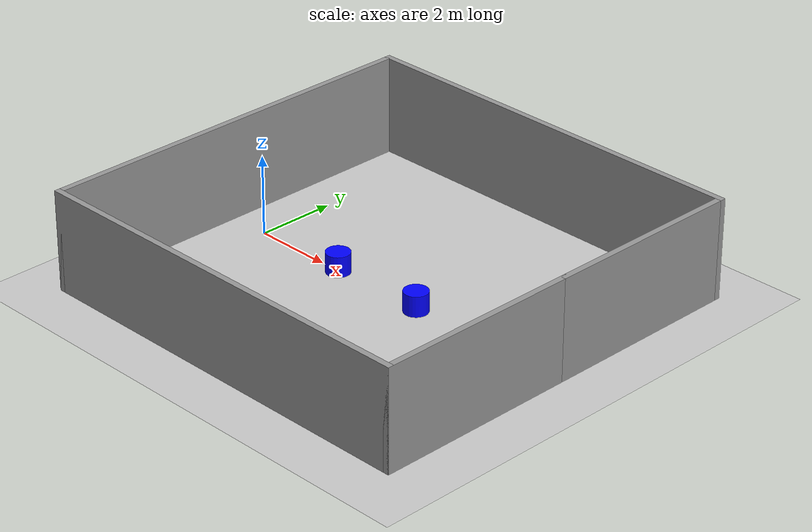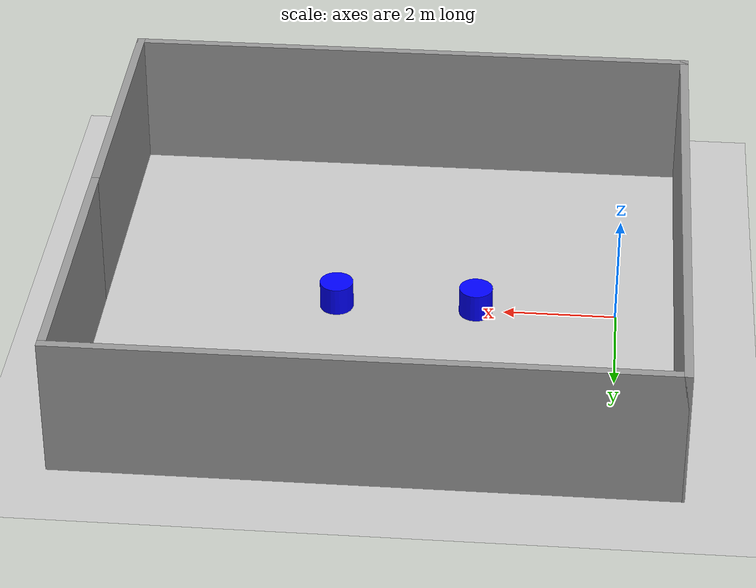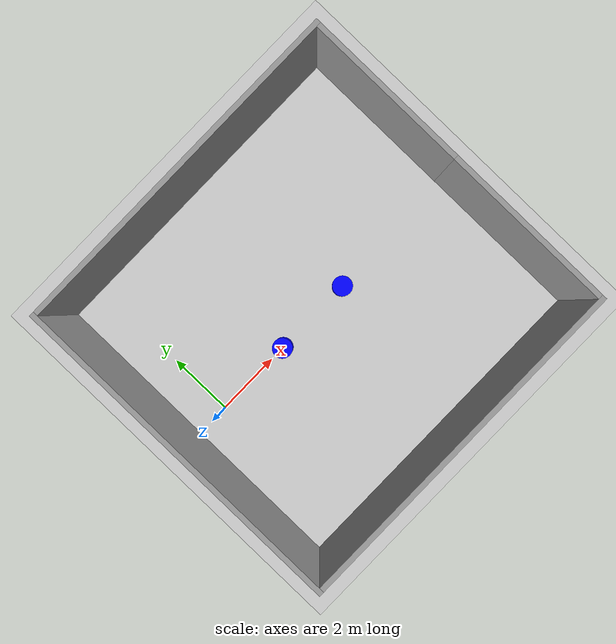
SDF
<sdf version="1.7">
 <world name="default">
  <light name="sun" type="directional">
   <pose>0 0 10 0 -0 0</pose>
   <diffuse>0.8 0.8 0.8 1</diffuse>
   <specular>0.2 0.2 0.2 1</specular>
   <attenuation>
    <range>1000</range>
    <constant>0.9</constant>
    <linear>0.01</linear>
    <quadratic>0.001</quadratic>
   </attenuation>
   <direction>-0.5 0.1 -0.9</direction>
   <spot><inner_angle>0</inner_angle><outer_angle>0</outer_angle><falloff>0</falloff></spot>
  </light>
  <model name="visual_cylinder_no_collision">
   <static>true</static>
   <pose>2.5 0 0 0 0 0</pose>
   <link name="cylinder_link">
    <visual name="cylinder_visual">
     <geometry><cylinder><radius>0.3</radius><length>1.0</length></cylinder></geometry>
     <material><ambient>0 0 1 1</ambient><diffuse>0 0 1 1</diffuse></material>
    </visual>
   </link>
  </model>
  <model name="visual_cylinder_no_collision1">
   <static>true</static>
   <pose>5 0 0 0 0 0</pose>
   <link name="cylinder_link1">
    <visual name="cylinder_visual1">
     <geometry><cylinder><radius>0.3</radius><length>1.0</length></cylinder></geometry>
     <material><ambient>0 0 1 1</ambient><diffuse>0 0 1 1</diffuse></material>
    </visual>
   </link>
  </model>
  <model name="ground_plane">
   <static>1</static>
   <link name="link">
    <collision name="collision">
     <geometry><plane><normal>0 0 1</normal><size>100 100</size></plane></geometry>
     <surface><friction><ode><mu>100</mu><mu2>50</mu2></ode></friction></surface>
    </collision>
    <visual name="visual">
     <cast_shadows>0</cast_shadows>
     <geometry><plane><normal>0 0 1</normal><size>100 100</size></plane></geometry>
     <material>
      <script><uri>file://media/materials/scripts/gazebo.material</uri><name>Gazebo/Grey</name></script>
     </material>
    </visual>
   </link>
  </model>
  <gravity>0 0 -9.8</gravity>
  <magnetic_field>6e-06 2.3e-05 -4.2e-05</magnetic_field>
  <atmosphere type="adiabatic"/>
  <physics type="ode">
   <max_step_size>0.001</max_step_size>
   <real_time_factor>1</real_time_factor>
   <real_time_update_rate>1000</real_time_update_rate>
  </physics>
  <scene><ambient>0.4 0.4 0.4 1</ambient><background>0.7 0.7 0.7 1</background><shadows>1</shadows></scene>
  <spherical_coordinates>
   <surface_model>EARTH_WGS84</surface_model>
   <latitude_deg>0</latitude_deg>
   <longitude_deg>0</longitude_deg>
   <elevation>0</elevation>
   <heading_deg>0</heading_deg>
  </spherical_coordinates>
  <model name="walls">
   <pose>4.06158 0.077644 0 0 -0 0</pose>
   <link name="Wall_1">
    <collision name="Wall_1_Collision">
     <geometry><box><size>10.25 0.15 2.5</size></box></geometry>
     <pose>0 0 1.25 0 -0 0</pose>
    </collision>
    <visual name="Wall_1_Visual">
     <pose>0 0 1.25 0 -0 0</pose>
     <geometry><box><size>10.25 0.15 2.5</size></box></geometry>
     <material>
      <script><uri>file://media/materials/scripts/gazebo.material</uri><name>Gazebo/Grey</name></script>
      <ambient>1 1 1 1</ambient>
     </material>
     <meta><layer>0</layer></meta>
    </visual>
    <pose>-5.175 0 0 0 -0 -1.5708</pose>
   </link>
   <link name="Wall_2">
    <collision name="Wall_2_Collision">
     <geometry><box><size>10.5 0.15 2.5</size></box></geometry>
     <pose>0 0 1.25 0 -0 0</pose>
    </collision>
    <visual name="Wall_2_Visual">
     <pose>0 0 1.25 0 -0 0</pose>
     <geometry><box><size>10.5 0.15 2.5</size></box></geometry>
     <material>
      <script><uri>file://media/materials/scripts/gazebo.material</uri><name>Gazebo/Grey</name></script>
      <ambient>1 1 1 1</ambient>
     </material>
     <meta><layer>0</layer></meta>
    </visual>
    <pose>0 -5.05 0 0 -0 0</pose>
   </link>
   <link name="Wall_3">
    <collision name="Wall_3_Collision">
     <geometry><box><size>5.25 0.15 2.5</size></box></geometry>
     <pose>0 0 1.25 0 -0 0</pose>
    </collision>
    <visual name="Wall_3_Visual">
     <pose>0 0 1.25 0 -0 0</pose>
     <geometry><box><size>5.25 0.15 2.5</size></box></geometry>
     <material>
      <script><uri>file://media/materials/scripts/gazebo.material</uri><name>Gazebo/Grey</name></script>
      <ambient>1 1 1 1</ambient>
     </material>
     <meta><layer>0</layer></meta>
    </visual>
    <pose>5.175 -2.5 0 0 -0 1.5708</pose>
   </link>
   <link name="Wall_4">
    <collision name="Wall_4_Collision">
     <geometry><box><size>5 0.15 2.5</size></box></geometry>
     <pose>0 0 1.25 0 -0 0</pose>
    </collision>
    <visual name="Wall_4_Visual">
     <pose>0 0 1.25 0 -0 0</pose>
     <geometry><box><size>5 0.15 2.5</size></box></geometry>
     <material>
      <script><uri>file://media/materials/scripts/gazebo.material</uri><name>Gazebo/Grey</name></script>
      <ambient>1 1 1 1</ambient>
     </material>
     <meta><layer>0</layer></meta>
    </visual>
    <pose>5.175 2.475 0 0 -0 1.5708</pose>
   </link>
   <link name="Wall_8">
    <collision name="Wall_8_Collision">
     <geometry><box><size>10.5 0.15 2.5</size></box></geometry>
     <pose>0 0 1.25 0 -0 0</pose>
    </collision>
    <visual name="Wall_8_Visual">
     <pose>0 0 1.25 0 -0 0</pose>
     <geometry><box><size>10.5 0.15 2.5</size></box></geometry>
     <material>
      <script><uri>file://media/materials/scripts/gazebo.material</uri><name>Gazebo/Grey</name></script>
      <ambient>1 1 1 1</ambient>
     </material>
     <meta><layer>0</layer></meta>
    </visual>
    <pose>0 5.05 0 0 -0 0</pose>
   </link>
   <static>1</static>
  </model>
 </world>
</sdf>
